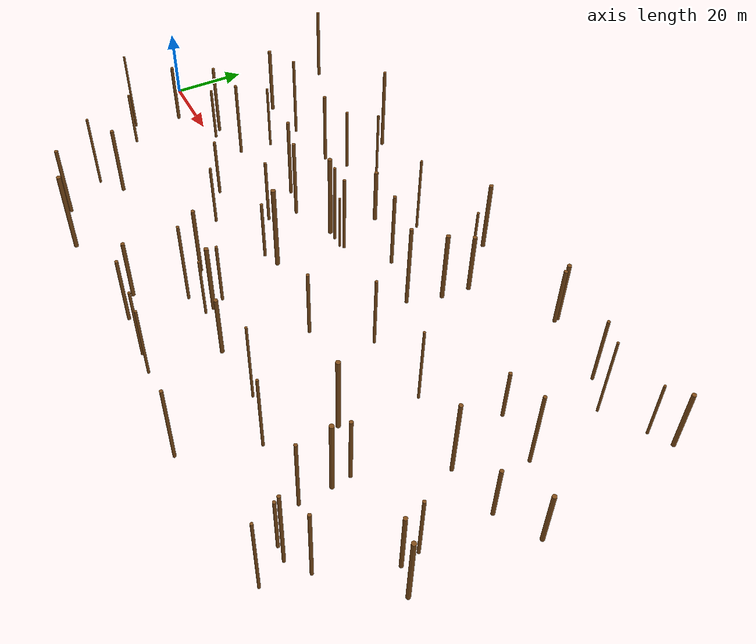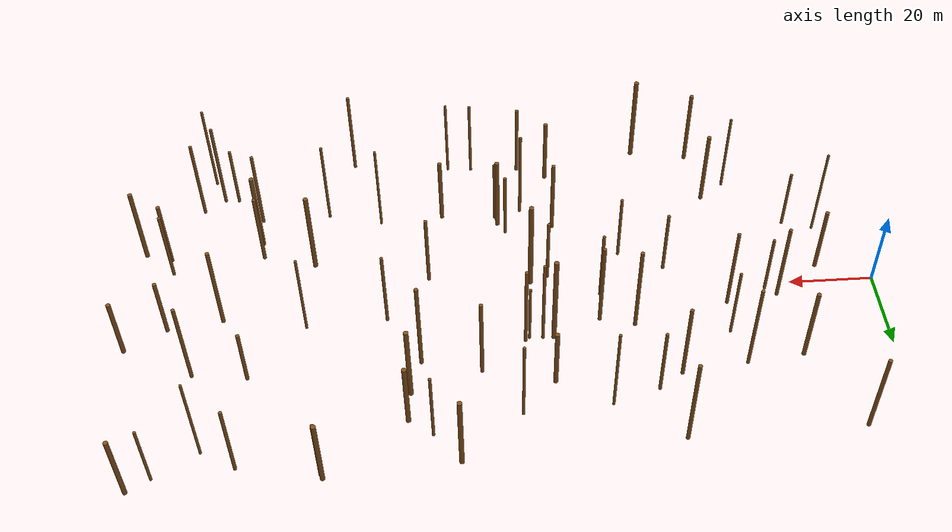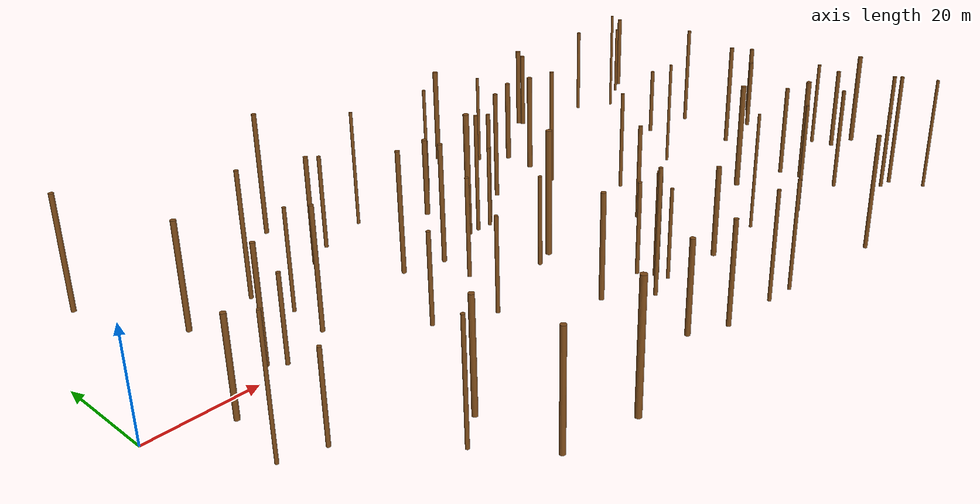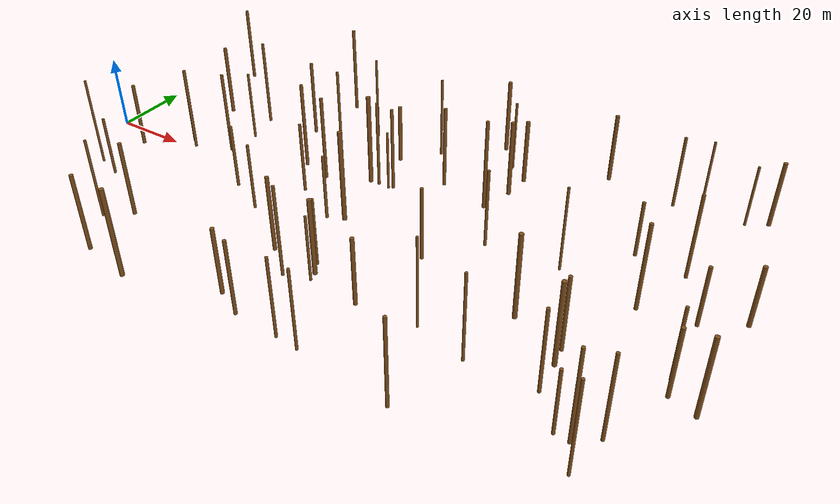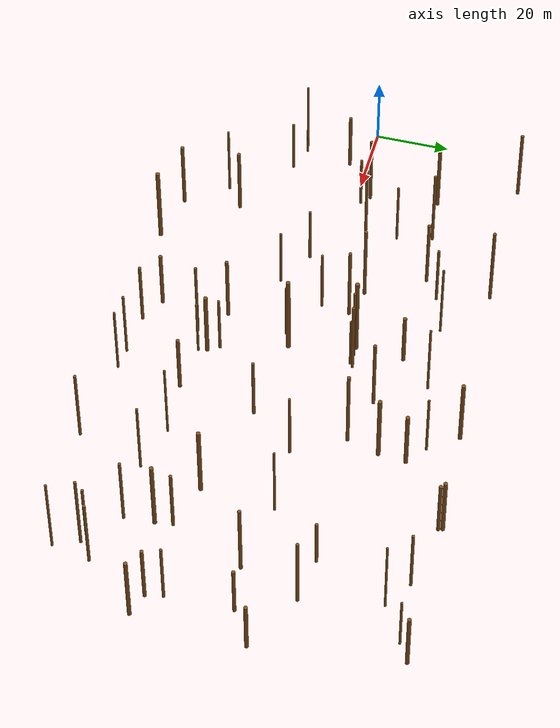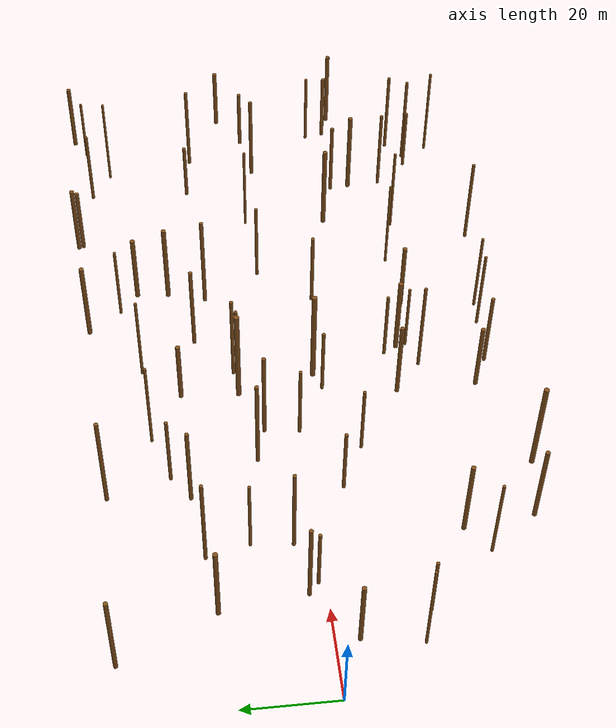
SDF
<sdf version="1.6">
 <world name="simple_forest">
  <include><uri>model://sun</uri></include>
  <model name="tree_3">
   <pose>36.27060998702499 -30.11623493133515 10.224707403016083 0 0 0</pose>
   <static>true</static>
   <link name="trunk">
    <collision name="collision">
     <geometry>
      <cylinder><radius>0.49496533133385695</radius><length>20.449414806032166</length></cylinder>
     </geometry>
    </collision>
    <visual name="visual">
     <geometry>
      <cylinder><radius>0.49496533133385695</radius><length>20.449414806032166</length></cylinder>
     </geometry>
     <material><ambient>0.5 0.3 0.1 1</ambient><diffuse>0.5 0.3 0.1 1</diffuse></material>
    </visual>
   </link>
  </model>
  <model name="tree_11">
   <pose>88.99405715439121 -26.72091136389698 8.88986801555046 0 0 0</pose>
   <static>true</static>
   <link name="trunk">
    <collision name="collision">
     <geometry>
      <cylinder><radius>0.3303004288229187</radius><length>17.77973603110092</length></cylinder>
     </geometry>
    </collision>
    <visual name="visual">
     <geometry>
      <cylinder><radius>0.3303004288229187</radius><length>17.77973603110092</length></cylinder>
     </geometry>
     <material><ambient>0.5 0.3 0.1 1</ambient><diffuse>0.5 0.3 0.1 1</diffuse></material>
    </visual>
   </link>
  </model>
  <model name="tree_22">
   <pose>100.00031805205595 -45.288362457526546 10.63723020851545 0 0 0</pose>
   <static>true</static>
   <link name="trunk">
    <collision name="collision">
     <geometry>
      <cylinder><radius>0.33289473910519773</radius><length>21.2744604170309</length></cylinder>
     </geometry>
    </collision>
    <visual name="visual">
     <geometry>
      <cylinder><radius>0.33289473910519773</radius><length>21.2744604170309</length></cylinder>
     </geometry>
     <material><ambient>0.5 0.3 0.1 1</ambient><diffuse>0.5 0.3 0.1 1</diffuse></material>
    </visual>
   </link>
  </model>
  <model name="tree_25">
   <pose>21.366211723391437 22.07218193601946 10.184851652043976 0 0 0</pose>
   <static>true</static>
   <link name="trunk">
    <collision name="collision">
     <geometry>
      <cylinder><radius>0.5045131107079724</radius><length>20.369703304087952</length></cylinder>
     </geometry>
    </collision>
    <visual name="visual">
     <geometry>
      <cylinder><radius>0.5045131107079724</radius><length>20.369703304087952</length></cylinder>
     </geometry>
     <material><ambient>0.5 0.3 0.1 1</ambient><diffuse>0.5 0.3 0.1 1</diffuse></material>
    </visual>
   </link>
  </model>
  <model name="tree_31">
   <pose>10.56617716666407 -17.58439429953269 12.145493081323085 0 0 0</pose>
   <static>true</static>
   <link name="trunk">
    <collision name="collision">
     <geometry>
      <cylinder><radius>0.3058430227157497</radius><length>24.29098616264617</length></cylinder>
     </geometry>
    </collision>
    <visual name="visual">
     <geometry>
      <cylinder><radius>0.3058430227157497</radius><length>24.29098616264617</length></cylinder>
     </geometry>
     <material><ambient>0.5 0.3 0.1 1</ambient><diffuse>0.5 0.3 0.1 1</diffuse></material>
    </visual>
   </link>
  </model>
  <model name="tree_34">
   <pose>78.52039328369978 26.060216525723163 8.141957322498815 0 0 0</pose>
   <static>true</static>
   <link name="trunk">
    <collision name="collision">
     <geometry>
      <cylinder><radius>0.5297503287920963</radius><length>16.28391464499763</length></cylinder>
     </geometry>
    </collision>
    <visual name="visual">
     <geometry>
      <cylinder><radius>0.5297503287920963</radius><length>16.28391464499763</length></cylinder>
     </geometry>
     <material><ambient>0.5 0.3 0.1 1</ambient><diffuse>0.5 0.3 0.1 1</diffuse></material>
    </visual>
   </link>
  </model>
  <model name="tree_40">
   <pose>80.28315514894221 13.110295727009891 12.02710006503064 0 0 0</pose>
   <static>true</static>
   <link name="trunk">
    <collision name="collision">
     <geometry>
      <cylinder><radius>0.3686825351433463</radius><length>24.05420013006128</length></cylinder>
     </geometry>
    </collision>
    <visual name="visual">
     <geometry>
      <cylinder><radius>0.3686825351433463</radius><length>24.05420013006128</length></cylinder>
     </geometry>
     <material><ambient>0.5 0.3 0.1 1</ambient><diffuse>0.5 0.3 0.1 1</diffuse></material>
    </visual>
   </link>
  </model>
  <model name="tree_44">
   <pose>105.9615060865351 -6.894881759362249 9.835123340183376 0 0 0</pose>
   <static>true</static>
   <link name="trunk">
    <collision name="collision">
     <geometry>
      <cylinder><radius>0.4270735869059762</radius><length>19.670246680366752</length></cylinder>
     </geometry>
    </collision>
    <visual name="visual">
     <geometry>
      <cylinder><radius>0.4270735869059762</radius><length>19.670246680366752</length></cylinder>
     </geometry>
     <material><ambient>0.5 0.3 0.1 1</ambient><diffuse>0.5 0.3 0.1 1</diffuse></material>
    </visual>
   </link>
  </model>
  <model name="tree_56">
   <pose>66.59362017840824 8.417759445897119 11.763599460241426 0 0 0</pose>
   <static>true</static>
   <link name="trunk">
    <collision name="collision">
     <geometry>
      <cylinder><radius>0.45085511487585406</radius><length>23.527198920482853</length></cylinder>
     </geometry>
    </collision>
    <visual name="visual">
     <geometry>
      <cylinder><radius>0.45085511487585406</radius><length>23.527198920482853</length></cylinder>
     </geometry>
     <material><ambient>0.5 0.3 0.1 1</ambient><diffuse>0.5 0.3 0.1 1</diffuse></material>
    </visual>
   </link>
  </model>
  <model name="tree_57">
   <pose>165.85840066008842 46.07789032744503 8.429124804903616 0 0 0</pose>
   <static>true</static>
   <link name="trunk">
    <collision name="collision">
     <geometry>
      <cylinder><radius>0.32403343957217606</radius><length>16.85824960980723</length></cylinder>
     </geometry>
    </collision>
    <visual name="visual">
     <geometry>
      <cylinder><radius>0.32403343957217606</radius><length>16.85824960980723</length></cylinder>
     </geometry>
     <material><ambient>0.5 0.3 0.1 1</ambient><diffuse>0.5 0.3 0.1 1</diffuse></material>
    </visual>
   </link>
  </model>
  <model name="tree_63">
   <pose>81.81768334822574 -4.171447738141389 12.480482239275473 0 0 0</pose>
   <static>true</static>
   <link name="trunk">
    <collision name="collision">
     <geometry>
      <cylinder><radius>0.5995363322563327</radius><length>24.960964478550945</length></cylinder>
     </geometry>
    </collision>
    <visual name="visual">
     <geometry>
      <cylinder><radius>0.5995363322563327</radius><length>24.960964478550945</length></cylinder>
     </geometry>
     <material><ambient>0.5 0.3 0.1 1</ambient><diffuse>0.5 0.3 0.1 1</diffuse></material>
    </visual>
   </link>
  </model>
  <model name="tree_64">
   <pose>82.52811388863667 -28.68456877329596 12.166296889968546 0 0 0</pose>
   <static>true</static>
   <link name="trunk">
    <collision name="collision">
     <geometry>
      <cylinder><radius>0.3795601244251204</radius><length>24.332593779937092</length></cylinder>
     </geometry>
    </collision>
    <visual name="visual">
     <geometry>
      <cylinder><radius>0.3795601244251204</radius><length>24.332593779937092</length></cylinder>
     </geometry>
     <material><ambient>0.5 0.3 0.1 1</ambient><diffuse>0.5 0.3 0.1 1</diffuse></material>
    </visual>
   </link>
  </model>
  <model name="tree_69">
   <pose>115.96561793232347 5.322364088481592 10.52414913515112 0 0 0</pose>
   <static>true</static>
   <link name="trunk">
    <collision name="collision">
     <geometry>
      <cylinder><radius>0.3817044636944449</radius><length>21.04829827030224</length></cylinder>
     </geometry>
    </collision>
    <visual name="visual">
     <geometry>
      <cylinder><radius>0.3817044636944449</radius><length>21.04829827030224</length></cylinder>
     </geometry>
     <material><ambient>0.5 0.3 0.1 1</ambient><diffuse>0.5 0.3 0.1 1</diffuse></material>
    </visual>
   </link>
  </model>
  <model name="tree_76">
   <pose>156.61284771180783 -37.25544807178612 11.99490744371295 0 0 0</pose>
   <static>true</static>
   <link name="trunk">
    <collision name="collision">
     <geometry><cylinder><radius>0.3924775049790401</radius><length>23.9898148874259</length></cylinder></geometry>
    </collision>
    <visual name="visual">
     <geometry><cylinder><radius>0.3924775049790401</radius><length>23.9898148874259</length></cylinder></geometry>
     <material><ambient>0.5 0.3 0.1 1</ambient><diffuse>0.5 0.3 0.1 1</diffuse></material>
    </visual>
   </link>
  </model>
  <model name="tree_81">
   <pose>34.538498279206834 23.656447175508205 12.154079430241627 0 0 0</pose>
   <static>true</static>
   <link name="trunk">
    <collision name="collision">
     <geometry>
      <cylinder><radius>0.3996556403839286</radius><length>24.308158860483253</length></cylinder>
     </geometry>
    </collision>
    <visual name="visual">
     <geometry>
      <cylinder><radius>0.3996556403839286</radius><length>24.308158860483253</length></cylinder>
     </geometry>
     <material><ambient>0.5 0.3 0.1 1</ambient><diffuse>0.5 0.3 0.1 1</diffuse></material>
    </visual>
   </link>
  </model>
  <model name="tree_92">
   <pose>11.674365436443171 42.55751654990827 11.097149995724227 0 0 0</pose>
   <static>true</static>
   <link name="trunk">
    <collision name="collision">
     <geometry>
      <cylinder><radius>0.4615355991278376</radius><length>22.194299991448453</length></cylinder>
     </geometry>
    </collision>
    <visual name="visual">
     <geometry>
      <cylinder><radius>0.4615355991278376</radius><length>22.194299991448453</length></cylinder>
     </geometry>
     <material><ambient>0.5 0.3 0.1 1</ambient><diffuse>0.5 0.3 0.1 1</diffuse></material>
    </visual>
   </link>
  </model>
  <model name="tree_115">
   <pose>86.70852032608846 -21.427184913684748 9.098547842093812 0 0 0</pose>
   <static>true</static>
   <link name="trunk">
    <collision name="collision">
     <geometry>
      <cylinder><radius>0.38151453212465536</radius><length>18.197095684187623</length></cylinder>
     </geometry>
    </collision>
    <visual name="visual">
     <geometry>
      <cylinder><radius>0.38151453212465536</radius><length>18.197095684187623</length></cylinder>
     </geometry>
     <material><ambient>0.5 0.3 0.1 1</ambient><diffuse>0.5 0.3 0.1 1</diffuse></material>
    </visual>
   </link>
  </model>
  <model name="tree_126">
   <pose>36.83102587690931 14.274964800933574 9.808492220257559 0 0 0</pose>
   <static>true</static>
   <link name="trunk">
    <collision name="collision">
     <geometry>
      <cylinder><radius>0.3407098461691693</radius><length>19.616984440515118</length></cylinder>
     </geometry>
    </collision>
    <visual name="visual">
     <geometry>
      <cylinder><radius>0.3407098461691693</radius><length>19.616984440515118</length></cylinder>
     </geometry>
     <material><ambient>0.5 0.3 0.1 1</ambient><diffuse>0.5 0.3 0.1 1</diffuse></material>
    </visual>
   </link>
  </model>
  <model name="tree_127">
   <pose>59.78178715374128 -12.089613581186043 9.134229024406542 0 0 0</pose>
   <static>true</static>
   <link name="trunk">
    <collision name="collision">
     <geometry>
      <cylinder><radius>0.36349808526344446</radius><length>18.268458048813084</length></cylinder>
     </geometry>
    </collision>
    <visual name="visual">
     <geometry>
      <cylinder><radius>0.36349808526344446</radius><length>18.268458048813084</length></cylinder>
     </geometry>
     <material><ambient>0.5 0.3 0.1 1</ambient><diffuse>0.5 0.3 0.1 1</diffuse></material>
    </visual>
   </link>
  </model>
  <model name="tree_132">
   <pose>30.17621714712902 -34.76176542152096 10.847294223099553 0 0 0</pose>
   <static>true</static>
   <link name="trunk">
    <collision name="collision">
     <geometry>
      <cylinder><radius>0.33786629246226185</radius><length>21.694588446199106</length></cylinder>
     </geometry>
    </collision>
    <visual name="visual">
     <geometry>
      <cylinder><radius>0.33786629246226185</radius><length>21.694588446199106</length></cylinder>
     </geometry>
     <material><ambient>0.5 0.3 0.1 1</ambient><diffuse>0.5 0.3 0.1 1</diffuse></material>
    </visual>
   </link>
  </model>
  <model name="tree_134">
   <pose>176.11125193412423 10.72474938909317 8.072664356894489 0 0 0</pose>
   <static>true</static>
   <link name="trunk">
    <collision name="collision">
     <geometry>
      <cylinder><radius>0.5243776955865858</radius><length>16.145328713788977</length></cylinder>
     </geometry>
    </collision>
    <visual name="visual">
     <geometry>
      <cylinder><radius>0.5243776955865858</radius><length>16.145328713788977</length></cylinder>
     </geometry>
     <material><ambient>0.5 0.3 0.1 1</ambient><diffuse>0.5 0.3 0.1 1</diffuse></material>
    </visual>
   </link>
  </model>
  <model name="tree_138">
   <pose>110.88229239151677 27.248088495122403 10.502058074084221 0 0 0</pose>
   <static>true</static>
   <link name="trunk">
    <collision name="collision">
     <geometry>
      <cylinder><radius>0.5550879717266388</radius><length>21.004116148168443</length></cylinder>
     </geometry>
    </collision>
    <visual name="visual">
     <geometry>
      <cylinder><radius>0.5550879717266388</radius><length>21.004116148168443</length></cylinder>
     </geometry>
     <material><ambient>0.5 0.3 0.1 1</ambient><diffuse>0.5 0.3 0.1 1</diffuse></material>
    </visual>
   </link>
  </model>
  <model name="tree_139">
   <pose>129.84451441664197 48.38443515146713 9.236018826542246 0 0 0</pose>
   <static>true</static>
   <link name="trunk">
    <collision name="collision">
     <geometry>
      <cylinder><radius>0.5347906039083059</radius><length>18.47203765308449</length></cylinder>
     </geometry>
    </collision>
    <visual name="visual">
     <geometry>
      <cylinder><radius>0.5347906039083059</radius><length>18.47203765308449</length></cylinder>
     </geometry>
     <material><ambient>0.5 0.3 0.1 1</ambient><diffuse>0.5 0.3 0.1 1</diffuse></material>
    </visual>
   </link>
  </model>
  <model name="tree_150">
   <pose>94.75683233844104 22.007466410419426 11.290823267412332 0 0 0</pose>
   <static>true</static>
   <link name="trunk">
    <collision name="collision">
     <geometry>
      <cylinder><radius>0.44657335405463616</radius><length>22.581646534824664</length></cylinder>
     </geometry>
    </collision>
    <visual name="visual">
     <geometry>
      <cylinder><radius>0.44657335405463616</radius><length>22.581646534824664</length></cylinder>
     </geometry>
     <material><ambient>0.5 0.3 0.1 1</ambient><diffuse>0.5 0.3 0.1 1</diffuse></material>
    </visual>
   </link>
  </model>
  <model name="tree_152">
   <pose>102.12281704912496 -27.840359952746986 9.031030150650443 0 0 0</pose>
   <static>true</static>
   <link name="trunk">
    <collision name="collision">
     <geometry>
      <cylinder><radius>0.5075361465885605</radius><length>18.062060301300885</length></cylinder>
     </geometry>
    </collision>
    <visual name="visual">
     <geometry>
      <cylinder><radius>0.5075361465885605</radius><length>18.062060301300885</length></cylinder>
     </geometry>
     <material><ambient>0.5 0.3 0.1 1</ambient><diffuse>0.5 0.3 0.1 1</diffuse></material>
    </visual>
   </link>
  </model>
  <model name="tree_164">
   <pose>83.34134855308339 12.944570695199829 8.245987922368275 0 0 0</pose>
   <static>true</static>
   <link name="trunk">
    <collision name="collision">
     <geometry>
      <cylinder><radius>0.3160827222877599</radius><length>16.49197584473655</length></cylinder>
     </geometry>
    </collision>
    <visual name="visual">
     <geometry>
      <cylinder><radius>0.3160827222877599</radius><length>16.49197584473655</length></cylinder>
     </geometry>
     <material><ambient>0.5 0.3 0.1 1</ambient><diffuse>0.5 0.3 0.1 1</diffuse></material>
    </visual>
   </link>
  </model>
  <model name="tree_171">
   <pose>12.648965376856875 -4.9496295382297575 8.956296445155138 0 0 0</pose>
   <static>true</static>
   <link name="trunk">
    <collision name="collision">
     <geometry>
      <cylinder><radius>0.478143358535869</radius><length>17.912592890310275</length></cylinder>
     </geometry>
    </collision>
    <visual name="visual">
     <geometry>
      <cylinder><radius>0.478143358535869</radius><length>17.912592890310275</length></cylinder>
     </geometry>
     <material><ambient>0.5 0.3 0.1 1</ambient><diffuse>0.5 0.3 0.1 1</diffuse></material>
    </visual>
   </link>
  </model>
  <model name="tree_176">
   <pose>174.26356132851743 -19.238818738576747 10.346035246595463 0 0 0</pose>
   <static>true</static>
   <link name="trunk">
    <collision name="collision">
     <geometry>
      <cylinder><radius>0.524687316620887</radius><length>20.692070493190926</length></cylinder>
     </geometry>
    </collision>
    <visual name="visual">
     <geometry>
      <cylinder><radius>0.524687316620887</radius><length>20.692070493190926</length></cylinder>
     </geometry>
     <material><ambient>0.5 0.3 0.1 1</ambient><diffuse>0.5 0.3 0.1 1</diffuse></material>
    </visual>
   </link>
  </model>
  <model name="tree_179">
   <pose>49.462176341776924 -6.797133583922744 8.75183951206002 0 0 0</pose>
   <static>true</static>
   <link name="trunk">
    <collision name="collision">
     <geometry>
      <cylinder><radius>0.39669647500748995</radius><length>17.50367902412004</length></cylinder>
     </geometry>
    </collision>
    <visual name="visual">
     <geometry>
      <cylinder><radius>0.39669647500748995</radius><length>17.50367902412004</length></cylinder>
     </geometry>
     <material><ambient>0.5 0.3 0.1 1</ambient><diffuse>0.5 0.3 0.1 1</diffuse></material>
    </visual>
   </link>
  </model>
  <model name="tree_180">
   <pose>100.41361776467535 46.19111021928367 10.375995546099652 0 0 0</pose>
   <static>true</static>
   <link name="trunk">
    <collision name="collision">
     <geometry>
      <cylinder><radius>0.5507875841718544</radius><length>20.751991092199304</length></cylinder>
     </geometry>
    </collision>
    <visual name="visual">
     <geometry>
      <cylinder><radius>0.5507875841718544</radius><length>20.751991092199304</length></cylinder>
     </geometry>
     <material><ambient>0.5 0.3 0.1 1</ambient><diffuse>0.5 0.3 0.1 1</diffuse></material>
    </visual>
   </link>
  </model>
  <model name="tree_182">
   <pose>49.82935641317001 25.62688304125571 10.757547447168431 0 0 0</pose>
   <static>true</static>
   <link name="trunk">
    <collision name="collision">
     <geometry>
      <cylinder><radius>0.44115024697549005</radius><length>21.515094894336862</length></cylinder>
     </geometry>
    </collision>
    <visual name="visual">
     <geometry>
      <cylinder><radius>0.44115024697549005</radius><length>21.515094894336862</length></cylinder>
     </geometry>
     <material><ambient>0.5 0.3 0.1 1</ambient><diffuse>0.5 0.3 0.1 1</diffuse></material>
    </visual>
   </link>
  </model>
  <model name="tree_192">
   <pose>130.21182252899365 47.31468158216944 8.696487311638252 0 0 0</pose>
   <static>true</static>
   <link name="trunk">
    <collision name="collision">
     <geometry>
      <cylinder><radius>0.48266150012458947</radius><length>17.392974623276505</length></cylinder>
     </geometry>
    </collision>
    <visual name="visual">
     <geometry>
      <cylinder><radius>0.48266150012458947</radius><length>17.392974623276505</length></cylinder>
     </geometry>
     <material><ambient>0.5 0.3 0.1 1</ambient><diffuse>0.5 0.3 0.1 1</diffuse></material>
    </visual>
   </link>
  </model>
  <model name="tree_193">
   <pose>166.79438216718006 5.0839007002669945 7.966046006407613 0 0 0</pose>
   <static>true</static>
   <link name="trunk">
    <collision name="collision">
     <geometry>
      <cylinder><radius>0.4656754227161199</radius><length>15.932092012815225</length></cylinder>
     </geometry>
    </collision>
    <visual name="visual">
     <geometry>
      <cylinder><radius>0.4656754227161199</radius><length>15.932092012815225</length></cylinder>
     </geometry>
     <material><ambient>0.5 0.3 0.1 1</ambient><diffuse>0.5 0.3 0.1 1</diffuse></material>
    </visual>
   </link>
  </model>
  <model name="tree_213">
   <pose>77.73653970973594 13.116101685464052 12.487129614781077 0 0 0</pose>
   <static>true</static>
   <link name="trunk">
    <collision name="collision">
     <geometry>
      <cylinder><radius>0.576278729634089</radius><length>24.974259229562154</length></cylinder>
     </geometry>
    </collision>
    <visual name="visual">
     <geometry>
      <cylinder><radius>0.576278729634089</radius><length>24.974259229562154</length></cylinder>
     </geometry>
     <material><ambient>0.5 0.3 0.1 1</ambient><diffuse>0.5 0.3 0.1 1</diffuse></material>
    </visual>
   </link>
  </model>
  <model name="tree_216">
   <pose>55.53105899044063 29.614346516221175 9.374205448876573 0 0 0</pose>
   <static>true</static>
   <link name="trunk">
    <collision name="collision">
     <geometry>
      <cylinder><radius>0.38801033278956265</radius><length>18.748410897753146</length></cylinder>
     </geometry>
    </collision>
    <visual name="visual">
     <geometry>
      <cylinder><radius>0.38801033278956265</radius><length>18.748410897753146</length></cylinder>
     </geometry>
     <material><ambient>0.5 0.3 0.1 1</ambient><diffuse>0.5 0.3 0.1 1</diffuse></material>
    </visual>
   </link>
  </model>
  <model name="tree_217">
   <pose>154.11409774240445 3.1166318148760013 11.462597369404765 0 0 0</pose>
   <static>true</static>
   <link name="trunk">
    <collision name="collision">
     <geometry>
      <cylinder><radius>0.46977841857478103</radius><length>22.92519473880953</length></cylinder>
     </geometry>
    </collision>
    <visual name="visual">
     <geometry>
      <cylinder><radius>0.46977841857478103</radius><length>22.92519473880953</length></cylinder>
     </geometry>
     <material><ambient>0.5 0.3 0.1 1</ambient><diffuse>0.5 0.3 0.1 1</diffuse></material>
    </visual>
   </link>
  </model>
  <model name="tree_227">
   <pose>58.55380826823994 10.64064930764745 12.020776454468628 0 0 0</pose>
   <static>true</static>
   <link name="trunk">
    <collision name="collision">
     <geometry>
      <cylinder><radius>0.4490181859571611</radius><length>24.041552908937255</length></cylinder>
     </geometry>
    </collision>
    <visual name="visual">
     <geometry>
      <cylinder><radius>0.4490181859571611</radius><length>24.041552908937255</length></cylinder>
     </geometry>
     <material><ambient>0.5 0.3 0.1 1</ambient><diffuse>0.5 0.3 0.1 1</diffuse></material>
    </visual>
   </link>
  </model>
  <model name="tree_239">
   <pose>23.779468549892165 3.6572308269059093 10.864141909368769 0 0 0</pose>
   <static>true</static>
   <link name="trunk">
    <collision name="collision">
     <geometry>
      <cylinder><radius>0.4364358083201624</radius><length>21.728283818737538</length></cylinder>
     </geometry>
    </collision>
    <visual name="visual">
     <geometry>
      <cylinder><radius>0.4364358083201624</radius><length>21.728283818737538</length></cylinder>
     </geometry>
     <material><ambient>0.5 0.3 0.1 1</ambient><diffuse>0.5 0.3 0.1 1</diffuse></material>
    </visual>
   </link>
  </model>
  <model name="tree_241">
   <pose>117.26264117723838 -26.617809778841682 11.92117422607426 0 0 0</pose>
   <static>true</static>
   <link name="trunk">
    <collision name="collision">
     <geometry>
      <cylinder><radius>0.3075073948939447</radius><length>23.84234845214852</length></cylinder>
     </geometry>
    </collision>
    <visual name="visual">
     <geometry>
      <cylinder><radius>0.3075073948939447</radius><length>23.84234845214852</length></cylinder>
     </geometry>
     <material><ambient>0.5 0.3 0.1 1</ambient><diffuse>0.5 0.3 0.1 1</diffuse></material>
    </visual>
   </link>
  </model>
  <model name="tree_244">
   <pose>148.37924238214887 44.62615328819463 9.96312309489103 0 0 0</pose>
   <static>true</static>
   <link name="trunk">
    <collision name="collision">
     <geometry>
      <cylinder><radius>0.39130937530680154</radius><length>19.92624618978206</length></cylinder>
     </geometry>
    </collision>
    <visual name="visual">
     <geometry>
      <cylinder><radius>0.39130937530680154</radius><length>19.92624618978206</length></cylinder>
     </geometry>
     <material><ambient>0.5 0.3 0.1 1</ambient><diffuse>0.5 0.3 0.1 1</diffuse></material>
    </visual>
   </link>
  </model>
  <model name="tree_245">
   <pose>106.22007863560339 38.725930852850226 9.768218784444462 0 0 0</pose>
   <static>true</static>
   <link name="trunk">
    <collision name="collision">
     <geometry>
      <cylinder><radius>0.34069921461190095</radius><length>19.536437568888925</length></cylinder>
     </geometry>
    </collision>
    <visual name="visual">
     <geometry>
      <cylinder><radius>0.34069921461190095</radius><length>19.536437568888925</length></cylinder>
     </geometry>
     <material><ambient>0.5 0.3 0.1 1</ambient><diffuse>0.5 0.3 0.1 1</diffuse></material>
    </visual>
   </link>
  </model>
  <model name="tree_250">
   <pose>108.36107836006902 18.56802654812853 12.389212647260234 0 0 0</pose>
   <static>true</static>
   <link name="trunk">
    <collision name="collision">
     <geometry>
      <cylinder><radius>0.4633397584446435</radius><length>24.778425294520467</length></cylinder>
     </geometry>
    </collision>
    <visual name="visual">
     <geometry>
      <cylinder><radius>0.4633397584446435</radius><length>24.778425294520467</length></cylinder>
     </geometry>
     <material><ambient>0.5 0.3 0.1 1</ambient><diffuse>0.5 0.3 0.1 1</diffuse></material>
    </visual>
   </link>
  </model>
  <model name="tree_254">
   <pose>134.66464645496245 6.457797590796332 11.325786879442923 0 0 0</pose>
   <static>true</static>
   <link name="trunk">
    <collision name="collision">
     <geometry>
      <cylinder><radius>0.32058304584730674</radius><length>22.651573758885846</length></cylinder>
     </geometry>
    </collision>
    <visual name="visual">
     <geometry>
      <cylinder><radius>0.32058304584730674</radius><length>22.651573758885846</length></cylinder>
     </geometry>
     <material><ambient>0.5 0.3 0.1 1</ambient><diffuse>0.5 0.3 0.1 1</diffuse></material>
    </visual>
   </link>
  </model>
  <model name="tree_256">
   <pose>156.07863814202926 40.053103563175824 11.792030631900882 0 0 0</pose>
   <static>true</static>
   <link name="trunk">
    <collision name="collision">
     <geometry>
      <cylinder><radius>0.3008506654440049</radius><length>23.584061263801765</length></cylinder>
     </geometry>
    </collision>
    <visual name="visual">
     <geometry>
      <cylinder><radius>0.3008506654440049</radius><length>23.584061263801765</length></cylinder>
     </geometry>
     <material><ambient>0.5 0.3 0.1 1</ambient><diffuse>0.5 0.3 0.1 1</diffuse></material>
    </visual>
   </link>
  </model>
  <model name="tree_257">
   <pose>153.24110051730293 -37.00078685565632 8.372485604506966 0 0 0</pose>
   <static>true</static>
   <link name="trunk">
    <collision name="collision">
     <geometry>
      <cylinder><radius>0.3751962590184371</radius><length>16.744971209013933</length></cylinder>
     </geometry>
    </collision>
    <visual name="visual">
     <geometry>
      <cylinder><radius>0.3751962590184371</radius><length>16.744971209013933</length></cylinder>
     </geometry>
     <material><ambient>0.5 0.3 0.1 1</ambient><diffuse>0.5 0.3 0.1 1</diffuse></material>
    </visual>
   </link>
  </model>
  <model name="tree_266">
   <pose>75.02541098691277 -22.49840004420468 10.241782170241802 0 0 0</pose>
   <static>true</static>
   <link name="trunk">
    <collision name="collision">
     <geometry>
      <cylinder><radius>0.48992301729030463</radius><length>20.483564340483603</length></cylinder>
     </geometry>
    </collision>
    <visual name="visual">
     <geometry>
      <cylinder><radius>0.48992301729030463</radius><length>20.483564340483603</length></cylinder>
     </geometry>
     <material><ambient>0.5 0.3 0.1 1</ambient><diffuse>0.5 0.3 0.1 1</diffuse></material>
    </visual>
   </link>
  </model>
  <model name="tree_287">
   <pose>94.1074695774075 -44.739117357447824 10.589190909630153 0 0 0</pose>
   <static>true</static>
   <link name="trunk">
    <collision name="collision">
     <geometry>
      <cylinder><radius>0.34722296913214595</radius><length>21.178381819260306</length></cylinder>
     </geometry>
    </collision>
    <visual name="visual">
     <geometry>
      <cylinder><radius>0.34722296913214595</radius><length>21.178381819260306</length></cylinder>
     </geometry>
     <material><ambient>0.5 0.3 0.1 1</ambient><diffuse>0.5 0.3 0.1 1</diffuse></material>
    </visual>
   </link>
  </model>
  <model name="tree_292">
   <pose>17.610215040884043 -19.858063798156323 8.186174026286634 0 0 0</pose>
   <static>true</static>
   <link name="trunk">
    <collision name="collision">
     <geometry>
      <cylinder><radius>0.3633701937660937</radius><length>16.37234805257327</length></cylinder>
     </geometry>
    </collision>
    <visual name="visual">
     <geometry>
      <cylinder><radius>0.3633701937660937</radius><length>16.37234805257327</length></cylinder>
     </geometry>
     <material><ambient>0.5 0.3 0.1 1</ambient><diffuse>0.5 0.3 0.1 1</diffuse></material>
    </visual>
   </link>
  </model>
  <model name="tree_296">
   <pose>51.879238947163465 -48.12584634143543 11.810550068060332 0 0 0</pose>
   <static>true</static>
   <link name="trunk">
    <collision name="collision">
     <geometry>
      <cylinder><radius>0.5763487303507238</radius><length>23.621100136120663</length></cylinder>
     </geometry>
    </collision>
    <visual name="visual">
     <geometry>
      <cylinder><radius>0.5763487303507238</radius><length>23.621100136120663</length></cylinder>
     </geometry>
     <material><ambient>0.5 0.3 0.1 1</ambient><diffuse>0.5 0.3 0.1 1</diffuse></material>
    </visual>
   </link>
  </model>
  <model name="tree_298">
   <pose>124.02163893716025 -47.91434409752512 11.50661077155226 0 0 0</pose>
   <static>true</static>
   <link name="trunk">
    <collision name="collision">
     <geometry>
      <cylinder><radius>0.39743045383365416</radius><length>23.01322154310452</length></cylinder>
     </geometry>
    </collision>
    <visual name="visual">
     <geometry>
      <cylinder><radius>0.39743045383365416</radius><length>23.01322154310452</length></cylinder>
     </geometry>
     <material><ambient>0.5 0.3 0.1 1</ambient><diffuse>0.5 0.3 0.1 1</diffuse></material>
    </visual>
   </link>
  </model>
  <model name="tree_309">
   <pose>77.60339591079853 -5.779193616371515 8.873368337430795 0 0 0</pose>
   <static>true</static>
   <link name="trunk">
    <collision name="collision">
     <geometry>
      <cylinder><radius>0.39084613054170386</radius><length>17.74673667486159</length></cylinder>
     </geometry>
    </collision>
    <visual name="visual">
     <geometry>
      <cylinder><radius>0.39084613054170386</radius><length>17.74673667486159</length></cylinder>
     </geometry>
     <material><ambient>0.5 0.3 0.1 1</ambient><diffuse>0.5 0.3 0.1 1</diffuse></material>
    </visual>
   </link>
  </model>
  <model name="tree_310">
   <pose>65.61039901094728 0.7336885289778152 9.759569318503411 0 0 0</pose>
   <static>true</static>
   <link name="trunk">
    <collision name="collision">
     <geometry>
      <cylinder><radius>0.39312235518189326</radius><length>19.519138637006822</length></cylinder>
     </geometry>
    </collision>
    <visual name="visual">
     <geometry>
      <cylinder><radius>0.39312235518189326</radius><length>19.519138637006822</length></cylinder>
     </geometry>
     <material><ambient>0.5 0.3 0.1 1</ambient><diffuse>0.5 0.3 0.1 1</diffuse></material>
    </visual>
   </link>
  </model>
  <model name="tree_311">
   <pose>66.32115032561285 33.16966316631215 11.821250169626197 0 0 0</pose>
   <static>true</static>
   <link name="trunk">
    <collision name="collision">
     <geometry>
      <cylinder><radius>0.32301930035203646</radius><length>23.642500339252393</length></cylinder>
     </geometry>
    </collision>
    <visual name="visual">
     <geometry>
      <cylinder><radius>0.32301930035203646</radius><length>23.642500339252393</length></cylinder>
     </geometry>
     <material><ambient>0.5 0.3 0.1 1</ambient><diffuse>0.5 0.3 0.1 1</diffuse></material>
    </visual>
   </link>
  </model>
  <model name="tree_315">
   <pose>159.35246592868214 -43.81262998988993 11.995634169778867 0 0 0</pose>
   <static>true</static>
   <link name="trunk">
    <collision name="collision">
     <geometry>
      <cylinder><radius>0.3310505631811175</radius><length>23.991268339557735</length></cylinder>
     </geometry>
    </collision>
    <visual name="visual">
     <geometry>
      <cylinder><radius>0.3310505631811175</radius><length>23.991268339557735</length></cylinder>
     </geometry>
     <material><ambient>0.5 0.3 0.1 1</ambient><diffuse>0.5 0.3 0.1 1</diffuse></material>
    </visual>
   </link>
  </model>
  <model name="tree_318">
   <pose>167.15874590172595 -12.714801789867295 9.543846986236602 0 0 0</pose>
   <static>true</static>
   <link name="trunk">
    <collision name="collision">
     <geometry>
      <cylinder><radius>0.38486807358432534</radius><length>19.087693972473204</length></cylinder>
     </geometry>
    </collision>
    <visual name="visual">
     <geometry>
      <cylinder><radius>0.38486807358432534</radius><length>19.087693972473204</length></cylinder>
     </geometry>
     <material><ambient>0.5 0.3 0.1 1</ambient><diffuse>0.5 0.3 0.1 1</diffuse></material>
    </visual>
   </link>
  </model>
  <model name="tree_320">
   <pose>75.25273573692029 -40.549405248490565 8.920734869390568 0 0 0</pose>
   <static>true</static>
   <link name="trunk">
    <collision name="collision">
     <geometry>
      <cylinder><radius>0.5035138034520243</radius><length>17.841469738781136</length></cylinder>
     </geometry>
    </collision>
    <visual name="visual">
     <geometry>
      <cylinder><radius>0.5035138034520243</radius><length>17.841469738781136</length></cylinder>
     </geometry>
     <material><ambient>0.5 0.3 0.1 1</ambient><diffuse>0.5 0.3 0.1 1</diffuse></material>
    </visual>
   </link>
  </model>
  <model name="tree_329">
   <pose>86.39343345786756 34.44283886858834 11.354373601815505 0 0 0</pose>
   <static>true</static>
   <link name="trunk">
    <collision name="collision">
     <geometry>
      <cylinder><radius>0.33034222910036826</radius><length>22.70874720363101</length></cylinder>
     </geometry>
    </collision>
    <visual name="visual">
     <geometry>
      <cylinder><radius>0.33034222910036826</radius><length>22.70874720363101</length></cylinder>
     </geometry>
     <material><ambient>0.5 0.3 0.1 1</ambient><diffuse>0.5 0.3 0.1 1</diffuse></material>
    </visual>
   </link>
  </model>
  <model name="tree_340">
   <pose>111.56383443092525 34.58922767334384 8.925315070296643 0 0 0</pose>
   <static>true</static>
   <link name="trunk">
    <collision name="collision">
     <geometry>
      <cylinder><radius>0.5553498144254336</radius><length>17.850630140593285</length></cylinder>
     </geometry>
    </collision>
    <visual name="visual">
     <geometry>
      <cylinder><radius>0.5553498144254336</radius><length>17.850630140593285</length></cylinder>
     </geometry>
     <material><ambient>0.5 0.3 0.1 1</ambient><diffuse>0.5 0.3 0.1 1</diffuse></material>
    </visual>
   </link>
  </model>
  <model name="tree_346">
   <pose>146.22359184861295 -21.312060268673182 10.980359942879918 0 0 0</pose>
   <static>true</static>
   <link name="trunk">
    <collision name="collision">
     <geometry>
      <cylinder><radius>0.5489284749458467</radius><length>21.960719885759836</length></cylinder>
     </geometry>
    </collision>
    <visual name="visual">
     <geometry>
      <cylinder><radius>0.5489284749458467</radius><length>21.960719885759836</length></cylinder>
     </geometry>
     <material><ambient>0.5 0.3 0.1 1</ambient><diffuse>0.5 0.3 0.1 1</diffuse></material>
    </visual>
   </link>
  </model>
  <model name="tree_347">
   <pose>147.40476490000435 20.553617528908035 7.52625599152809 0 0 0</pose>
   <static>true</static>
   <link name="trunk">
    <collision name="collision">
     <geometry>
      <cylinder><radius>0.43458044219467395</radius><length>15.05251198305618</length></cylinder>
     </geometry>
    </collision>
    <visual name="visual">
     <geometry>
      <cylinder><radius>0.43458044219467395</radius><length>15.05251198305618</length></cylinder>
     </geometry>
     <material><ambient>0.5 0.3 0.1 1</ambient><diffuse>0.5 0.3 0.1 1</diffuse></material>
    </visual>
   </link>
  </model>
  <model name="tree_348">
   <pose>88.43351355801407 -24.40760715629553 10.244021227219177 0 0 0</pose>
   <static>true</static>
   <link name="trunk">
    <collision name="collision">
     <geometry>
      <cylinder><radius>0.5504889297847142</radius><length>20.488042454438354</length></cylinder>
     </geometry>
    </collision>
    <visual name="visual">
     <geometry>
      <cylinder><radius>0.5504889297847142</radius><length>20.488042454438354</length></cylinder>
     </geometry>
     <material><ambient>0.5 0.3 0.1 1</ambient><diffuse>0.5 0.3 0.1 1</diffuse></material>
    </visual>
   </link>
  </model>
  <model name="tree_352">
   <pose>26.270998683835483 1.5375730209406058 8.2178842012313 0 0 0</pose>
   <static>true</static>
   <link name="trunk">
    <collision name="collision">
     <geometry><cylinder><radius>0.372581440326298</radius><length>16.4357684024626</length></cylinder></geometry>
    </collision>
    <visual name="visual">
     <geometry><cylinder><radius>0.372581440326298</radius><length>16.4357684024626</length></cylinder></geometry>
     <material><ambient>0.5 0.3 0.1 1</ambient><diffuse>0.5 0.3 0.1 1</diffuse></material>
    </visual>
   </link>
  </model>
  <model name="tree_363">
   <pose>51.48688251107818 43.33709799503973 12.445613511480616 0 0 0</pose>
   <static>true</static>
   <link name="trunk">
    <collision name="collision">
     <geometry>
      <cylinder><radius>0.4546150767763496</radius><length>24.891227022961232</length></cylinder>
     </geometry>
    </collision>
    <visual name="visual">
     <geometry>
      <cylinder><radius>0.4546150767763496</radius><length>24.891227022961232</length></cylinder>
     </geometry>
     <material><ambient>0.5 0.3 0.1 1</ambient><diffuse>0.5 0.3 0.1 1</diffuse></material>
    </visual>
   </link>
  </model>
  <model name="tree_366">
   <pose>133.23025816193956 -13.198082568532698 11.216538527598106 0 0 0</pose>
   <static>true</static>
   <link name="trunk">
    <collision name="collision">
     <geometry>
      <cylinder><radius>0.5668459551036844</radius><length>22.43307705519621</length></cylinder>
     </geometry>
    </collision>
    <visual name="visual">
     <geometry>
      <cylinder><radius>0.5668459551036844</radius><length>22.43307705519621</length></cylinder>
     </geometry>
     <material><ambient>0.5 0.3 0.1 1</ambient><diffuse>0.5 0.3 0.1 1</diffuse></material>
    </visual>
   </link>
  </model>
  <model name="tree_374">
   <pose>84.29075333827768 13.751253788329834 11.50547987781085 0 0 0</pose>
   <static>true</static>
   <link name="trunk">
    <collision name="collision">
     <geometry><cylinder><radius>0.4089933391952947</radius><length>23.0109597556217</length></cylinder></geometry>
    </collision>
    <visual name="visual">
     <geometry><cylinder><radius>0.4089933391952947</radius><length>23.0109597556217</length></cylinder></geometry>
     <material><ambient>0.5 0.3 0.1 1</ambient><diffuse>0.5 0.3 0.1 1</diffuse></material>
    </visual>
   </link>
  </model>
  <model name="tree_388">
   <pose>130.14883052767232 -29.901962882231427 11.451865304038746 0 0 0</pose>
   <static>true</static>
   <link name="trunk">
    <collision name="collision">
     <geometry>
      <cylinder><radius>0.3416630616115097</radius><length>22.903730608077492</length></cylinder>
     </geometry>
    </collision>
    <visual name="visual">
     <geometry>
      <cylinder><radius>0.3416630616115097</radius><length>22.903730608077492</length></cylinder>
     </geometry>
     <material><ambient>0.5 0.3 0.1 1</ambient><diffuse>0.5 0.3 0.1 1</diffuse></material>
    </visual>
   </link>
  </model>
  <model name="tree_389">
   <pose>36.02118654018304 5.402143725959505 11.518308631442931 0 0 0</pose>
   <static>true</static>
   <link name="trunk">
    <collision name="collision">
     <geometry>
      <cylinder><radius>0.41067334965036617</radius><length>23.036617262885862</length></cylinder>
     </geometry>
    </collision>
    <visual name="visual">
     <geometry>
      <cylinder><radius>0.41067334965036617</radius><length>23.036617262885862</length></cylinder>
     </geometry>
     <material><ambient>0.5 0.3 0.1 1</ambient><diffuse>0.5 0.3 0.1 1</diffuse></material>
    </visual>
   </link>
  </model>
  <model name="tree_396">
   <pose>161.48531214209862 -33.534292010987585 11.046660662646229 0 0 0</pose>
   <static>true</static>
   <link name="trunk">
    <collision name="collision">
     <geometry>
      <cylinder><radius>0.39679822534636666</radius><length>22.093321325292457</length></cylinder>
     </geometry>
    </collision>
    <visual name="visual">
     <geometry>
      <cylinder><radius>0.39679822534636666</radius><length>22.093321325292457</length></cylinder>
     </geometry>
     <material><ambient>0.5 0.3 0.1 1</ambient><diffuse>0.5 0.3 0.1 1</diffuse></material>
    </visual>
   </link>
  </model>
  <model name="tree_402">
   <pose>38.08975301988884 -45.453819670865805 10.383856157386894 0 0 0</pose>
   <static>true</static>
   <link name="trunk">
    <collision name="collision">
     <geometry><cylinder><radius>0.492436120147308</radius><length>20.76771231477379</length></cylinder></geometry>
    </collision>
    <visual name="visual">
     <geometry><cylinder><radius>0.492436120147308</radius><length>20.76771231477379</length></cylinder></geometry>
     <material><ambient>0.5 0.3 0.1 1</ambient><diffuse>0.5 0.3 0.1 1</diffuse></material>
    </visual>
   </link>
  </model>
  <model name="tree_406">
   <pose>82.24329525029233 -44.0086967065331 9.921255650536796 0 0 0</pose>
   <static>true</static>
   <link name="trunk">
    <collision name="collision">
     <geometry>
      <cylinder><radius>0.43188164997612327</radius><length>19.842511301073593</length></cylinder>
     </geometry>
    </collision>
    <visual name="visual">
     <geometry>
      <cylinder><radius>0.43188164997612327</radius><length>19.842511301073593</length></cylinder>
     </geometry>
     <material><ambient>0.5 0.3 0.1 1</ambient><diffuse>0.5 0.3 0.1 1</diffuse></material>
    </visual>
   </link>
  </model>
  <model name="tree_412">
   <pose>168.10266550885936 -17.256417919880505 9.063574604311365 0 0 0</pose>
   <static>true</static>
   <link name="trunk">
    <collision name="collision">
     <geometry>
      <cylinder><radius>0.4733061113680789</radius><length>18.12714920862273</length></cylinder>
     </geometry>
    </collision>
    <visual name="visual">
     <geometry>
      <cylinder><radius>0.4733061113680789</radius><length>18.12714920862273</length></cylinder>
     </geometry>
     <material><ambient>0.5 0.3 0.1 1</ambient><diffuse>0.5 0.3 0.1 1</diffuse></material>
    </visual>
   </link>
  </model>
  <model name="tree_424">
   <pose>145.6660098318452 -16.695929464723278 9.78494279641437 0 0 0</pose>
   <static>true</static>
   <link name="trunk">
    <collision name="collision">
     <geometry><cylinder><radius>0.442123245118557</radius><length>19.56988559282874</length></cylinder></geometry>
    </collision>
    <visual name="visual">
     <geometry><cylinder><radius>0.442123245118557</radius><length>19.56988559282874</length></cylinder></geometry>
     <material><ambient>0.5 0.3 0.1 1</ambient><diffuse>0.5 0.3 0.1 1</diffuse></material>
    </visual>
   </link>
  </model>
  <model name="tree_426">
   <pose>170.87702541817 49.061573756114 8.99617171264159 0 0 0</pose>
   <static>true</static>
   <link name="trunk">
    <collision name="collision">
     <geometry>
      <cylinder><radius>0.5217958081720813</radius><length>17.99234342528318</length></cylinder>
     </geometry>
    </collision>
    <visual name="visual">
     <geometry>
      <cylinder><radius>0.5217958081720813</radius><length>17.99234342528318</length></cylinder>
     </geometry>
     <material><ambient>0.5 0.3 0.1 1</ambient><diffuse>0.5 0.3 0.1 1</diffuse></material>
    </visual>
   </link>
  </model>
  <model name="tree_435">
   <pose>159.916945538152 19.050026091852544 11.374861509035455 0 0 0</pose>
   <static>true</static>
   <link name="trunk">
    <collision name="collision">
     <geometry>
      <cylinder><radius>0.4231132227968115</radius><length>22.74972301807091</length></cylinder>
     </geometry>
    </collision>
    <visual name="visual">
     <geometry>
      <cylinder><radius>0.4231132227968115</radius><length>22.74972301807091</length></cylinder>
     </geometry>
     <material><ambient>0.5 0.3 0.1 1</ambient><diffuse>0.5 0.3 0.1 1</diffuse></material>
    </visual>
   </link>
  </model>
  <model name="tree_437">
   <pose>146.7016609273581 -29.26582950287553 10.811133998571744 0 0 0</pose>
   <static>true</static>
   <link name="trunk">
    <collision name="collision">
     <geometry>
      <cylinder><radius>0.3975148603278164</radius><length>21.62226799714349</length></cylinder>
     </geometry>
    </collision>
    <visual name="visual">
     <geometry>
      <cylinder><radius>0.3975148603278164</radius><length>21.62226799714349</length></cylinder>
     </geometry>
     <material><ambient>0.5 0.3 0.1 1</ambient><diffuse>0.5 0.3 0.1 1</diffuse></material>
    </visual>
   </link>
  </model>
 </world>
</sdf>
